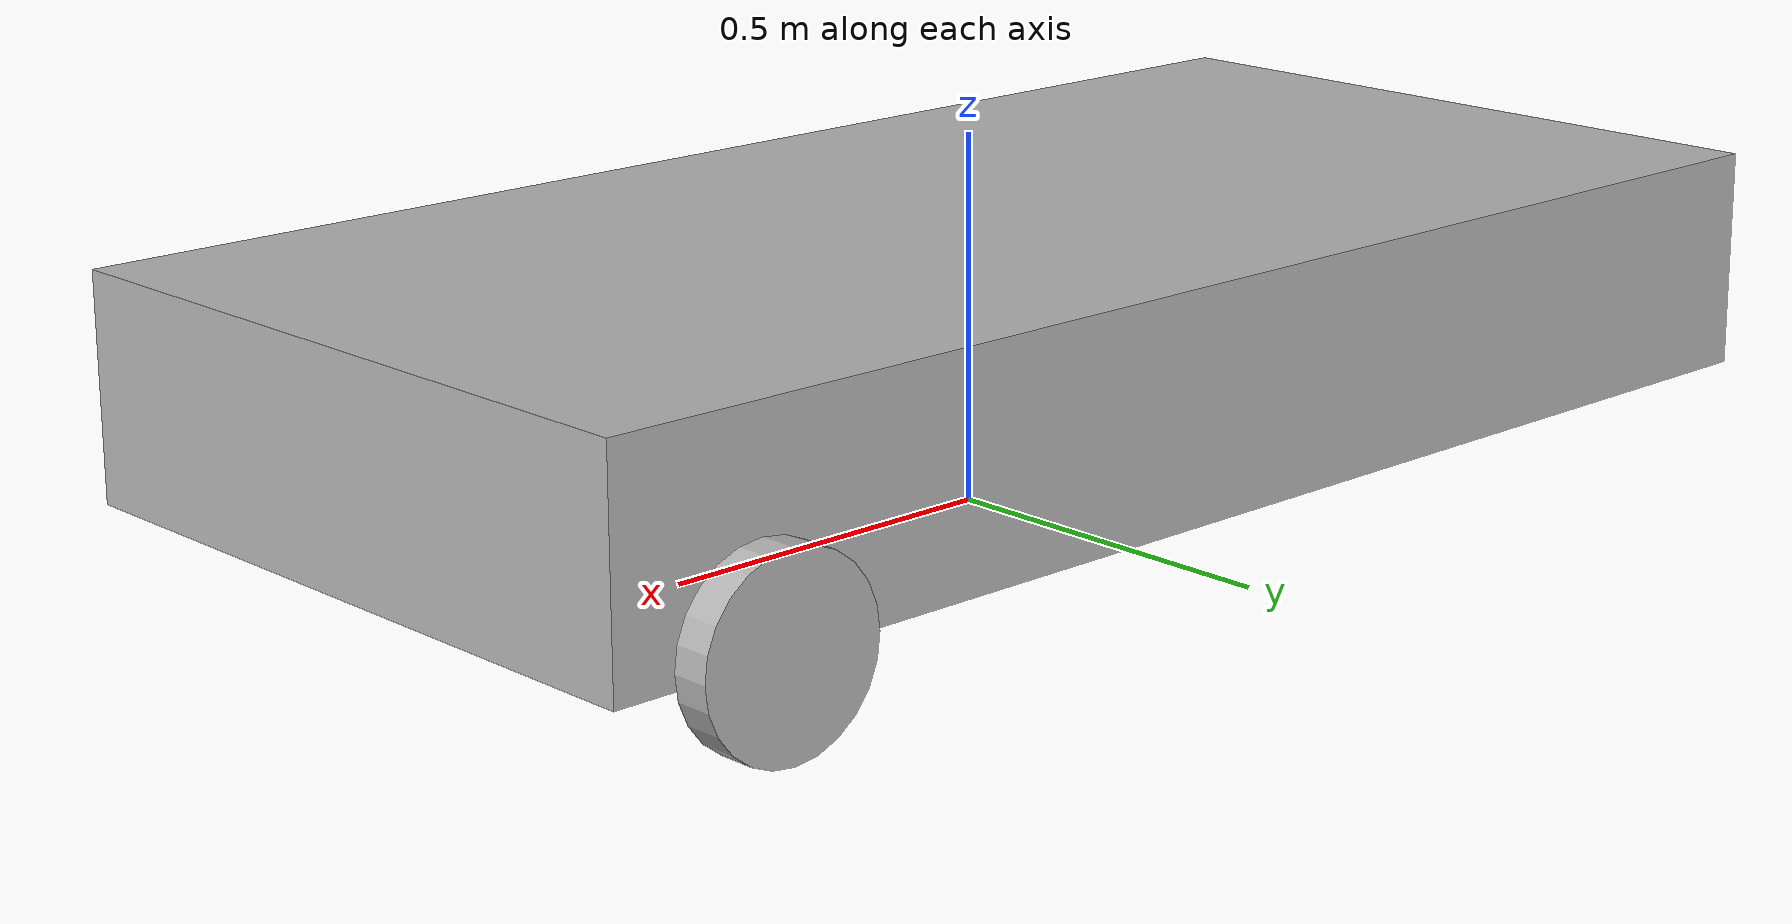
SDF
<?xml version='1.0'?>
<sdf version='1.5'>
  <model name="mobile_base">
    <link name='chassis'>
      <pose>0 0 .25 0 0 0</pose>

      <inertial>
        <mass>20.0</mass>
        <pose>-0.1 0 -0.1 0 0 0</pose>
        <inertia>
          <ixx>0.5</ixx>
          <iyy>1.0</iyy>
          <izz>0.1</izz>
        </inertia>
      </inertial>

      <collision name='collision'>
        <geometry>
          <box>
            <size>2 1 0.3</size>
          </box>
        </geometry>
      </collision>

      <visual name='visual'>
        <geometry>
          <box>
            <size>2 1 0.3</size>
          </box>
        </geometry>
      </visual>

      <collision name='caster_collision'>
        <pose>-0.8 0 -0.125 0 0 0</pose>
        <geometry>
          <sphere>
            <radius>.125</radius>
          </sphere>
        </geometry>

        <surface>
          <friction>
            <ode>
              <mu>0</mu>
              <mu2>0</mu2>
            </ode>
          </friction>
        </surface>
      </collision>

      <visual name='caster_visual'>
        <pose>-0.8 0 -0.125 0 0 0</pose>
        <geometry>
          <sphere>
            <radius>.125</radius>
          </sphere>
        </geometry>
      </visual>
    </link>
    <link name="left_wheel">
      <pose>0.8 0.535 0.125 0 1.5707 1.5707</pose>
      <collision name="collision">
        <geometry>
          <cylinder>
            <radius>.125</radius>
            <length>.05</length>
          </cylinder>
        </geometry>
      </collision>
      <visual name="visual">
        <geometry>
          <cylinder>
            <radius>.125</radius>
            <length>.05</length>
          </cylinder>
        </geometry>
      </visual>
    </link>

    <link name="right_wheel">
      <pose>0.8 -0.535 0.125 0 1.5707 1.5707</pose>
      <collision name="collision">
        <geometry>
          <cylinder>
            <radius>.125</radius>
            <length>.05</length>
          </cylinder>
        </geometry>
      </collision>
      <visual name="visual">
        <geometry>
          <cylinder>
            <radius>.125</radius>
            <length>.05</length>
          </cylinder>
        </geometry>
      </visual>
    </link>

    <joint type="revolute" name="left_wheel_hinge">
      <pose>0 0 -0.03 0 0 0</pose>
      <child>left_wheel</child>
      <parent>chassis</parent>
      <axis>
        <use_parent_model_frame>true</use_parent_model_frame>
        <xyz>0 1 0</xyz>
      </axis>
    </joint>

    <joint type="revolute" name="right_wheel_hinge">
      <pose>0 0 0.03 0 0 0</pose>
      <child>right_wheel</child>
      <parent>chassis</parent>
      <axis>
        <use_parent_model_frame>true</use_parent_model_frame>
        <xyz>0 1 0</xyz>
      </axis>
    </joint>

  </model>
 </sdf>
